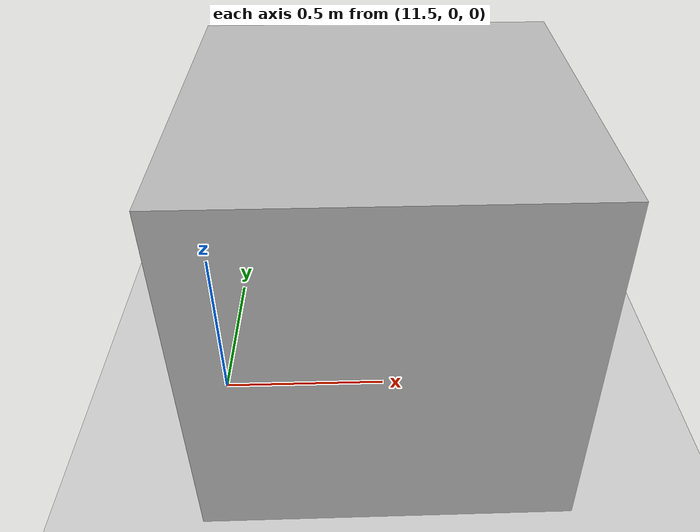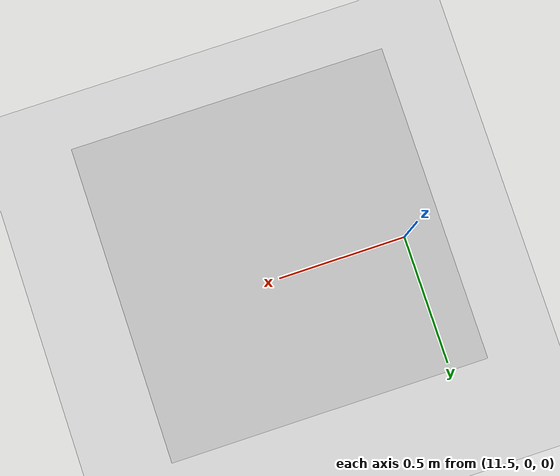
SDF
<?xml version="1.0" ?>

<sdf version="1.6">
  <world name="obstacle_world">

    <!-- Ground -->
    <include>
      <uri>model://ground_plane</uri>
    </include>

    <!-- Light -->
    <include>
      <uri>model://sun</uri>
    </include>

    <!-- Obstacle 1 -->
    <model name="box1">
      <static>true</static>

      <pose>12 0 0.5 0 0 0</pose>

      <link name="link">

        <collision name="collision">
          <geometry>
            <box>
              <size>1 1 1</size>
            </box>
          </geometry>
        </collision>

        <visual name="visual">
          <geometry>
            <box>
              <size>1 1 1</size>
            </box>
          </geometry>
        </visual>

      </link>
    </model>

  </world>
</sdf>
